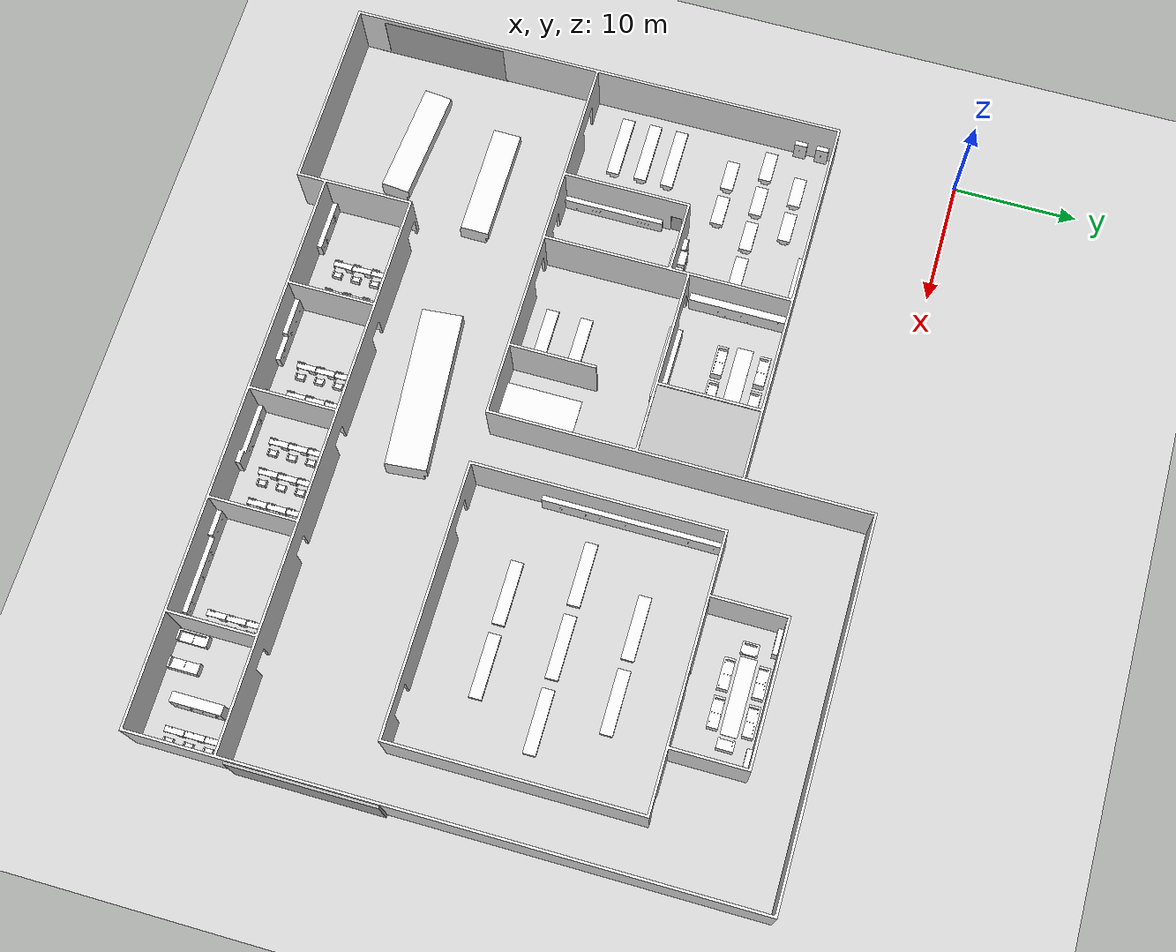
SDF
<!-- ### sdf is standard definition of worlds in gazebo -->
<sdf version='1.5'>
  <world name='my2ndworld'>
    <!-- A global light source -->
    <include>

<!-- ### Model which comes with gazebo e.g sun -->
      <uri>model://sun</uri>
    </include>

    <!-- A ground plane -->
    <include>
      <uri>model://ground_plane</uri>
    </include>

    <physics type="ode">
      <real_time_update_rate>1000.0</real_time_update_rate>
      <max_step_size>0.001</max_step_size>
      <real_time_factor>1</real_time_factor>
      <ode>
        <solver>
          <type>quick</type>
          <iters>150</iters>
          <precon_iters>0</precon_iters>
          <sor>1.400000</sor>
          <use_dynamic_moi_rescaling>1</use_dynamic_moi_rescaling>
        </solver>
        <constraints>
          <cfm>0.00001</cfm>
          <erp>0.2</erp>
          <contact_max_correcting_vel>2000.000000</contact_max_correcting_vel>
          <contact_surface_layer>0.01000</contact_surface_layer>
        </constraints>
      </ode>
    </physics>

    <!-- Load world -->
    <include>
<!-- ### it used to be: model://turtlebot3_world -->
      <uri>model://my2ndmodel</uri>
      <static>1</static>
    </include>

    <scene>
      <ambient>0.4 0.4 0.4 1</ambient>
      <background>0.7 0.7 0.7 1</background>
      <shadows>true</shadows>
    </scene>
 <!--  ### note the pose line below moves the location of the object. I could also add this line under the sun model to adjust the location of the sun away from its default pose -->
    <gui fullscreen='0'>
      <camera name='user_camera'>
        <pose>0.8 0.0 12.0 0 1.5708 0</pose>
        <view_controller>orbit</view_controller>
      </camera>
    </gui>

    <model name="complex_doorway_blocker_1">
      <static>true</static>
      <pose>0.068 -43.103275 0.75 0 0 0</pose>
      <link name="link">
        <collision name="collision">
          <geometry>
            <box>
              <size>0.230970 10.9932 7.61953</size>
            </box>
          </geometry>
        </collision>
        <visual name="visual">
          <geometry>
            <box>
              <size>0.230970 10.9932 7.61953</size>
            </box>
          </geometry>
        </visual>
      </link>
    </model>

    <model name="complex_doorway_blocker_2">
      <static>true</static>
      <pose>60.048096 -34.320667 0.75 0 0 0</pose>
      <link name="link">
        <collision name="collision">
          <geometry>
            <box>
              <size>0.335726 11.550700 7.578910</size>
            </box>
          </geometry>
        </collision>
        <visual name="visual">
          <geometry>
            <box>
              <size>0.335726 11.550700 7.578910</size>
            </box>
          </geometry>
        </visual>
      </link>
    </model>

    <model name="complex_doorway_blocker_3">
      <static>true</static>
      <pose>9.534438 -20.813101 0.75 0 0 0</pose>
      <link name="link">
        <collision name="collision">
          <geometry>
            <box>
              <size>0.011890 1.178190 5.260690</size>
            </box>
          </geometry>
        </collision>
        <visual name="visual">
          <geometry>
            <box>
              <size>0.011890 1.178190 5.260690</size>
            </box>
          </geometry>
        </visual>
      </link>
    </model>

    <model name="room_blocker">
      <static>true</static>
      <pose>27.353083 -14.194550 0.75 0 0 0</pose>
      <link name="link">
        <collision name="collision">
          <geometry>
            <box>
              <size>5.5524210 8.07860 8.287240</size>
            </box>
          </geometry>
        </collision>
        <visual name="visual">
          <geometry>
            <box>
              <size>5.5524210 8.07860 8.287240</size>
            </box>
          </geometry>
        </visual>
      </link>
    </model>

</world>
</sdf>

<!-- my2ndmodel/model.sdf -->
<sdf version='1.4'>
<!-- # BASICALLY a copy of model.sdf. BUT FOR sdf version 1.4. ITS NOT USING THIS ONE -->
    <model name='my2ndmodel'>
      <static>1</static>
      <link name='Environment'>>
      <collision name='Obstacles'>
          <pose>0 0 0 0 0 0</pose>
          <geometry>
           <mesh>
            <uri>model://my2ndmodel/meshes/Obstacles.dae</uri>
            <scale>1.0 1.0 1.0</scale>
           </mesh>
          </geometry>
          <max_contacts>10</max_contacts>
          <surface>
            <bounce/>
            <friction>
              <ode/>
            </friction>
            <contact>
              <ode/>
            </contact>
          </surface>
        </collision>
<!--visual: -->
        <visual name='Obstacles'>
          <pose>0 0 0 0 0 0</pose>
          <geometry>
           <mesh>
            <uri>model://my2ndmodel/meshes/Obstacles.dae</uri>
            <scale>1.0 1.0 1.0</scale>
           </mesh>
          </geometry>
          <material>
            <script>
              <uri>file://media/materials/scripts/gazebo.material</uri>
              <name>Gazebo/White</name>
            </script>
          </material>
        </visual>

        <collision name='Walls'>
          <pose>0 0 0 0 0 0</pose>
          <geometry>
           <mesh>
            <uri>model://my2ndmodel/meshes/Walls.dae</uri>
            <scale>1.0 1.0 1.0</scale>
           </mesh>
          </geometry>
          <max_contacts>10</max_contacts>
          <surface>
            <bounce/>
            <friction>
              <ode/>
            </friction>
            <contact>
              <ode/>
            </contact>
          </surface>
        </collision>

        <visual name='Walls'>
          <pose>0 0 0 0 0 0</pose>
          <geometry>
           <mesh>
            <uri>model://my2ndmodel/meshes/Walls.dae</uri>
            <scale>1.0 1.0 1.0</scale>
           </mesh>
          </geometry>
          <material>
            <script>
              <uri>file://media/materials/scripts/gazebo.material</uri>
              <name>Gazebo/White</name>
            </script>
          </material>
        </visual>

    </link>
  </model>
</sdf>
